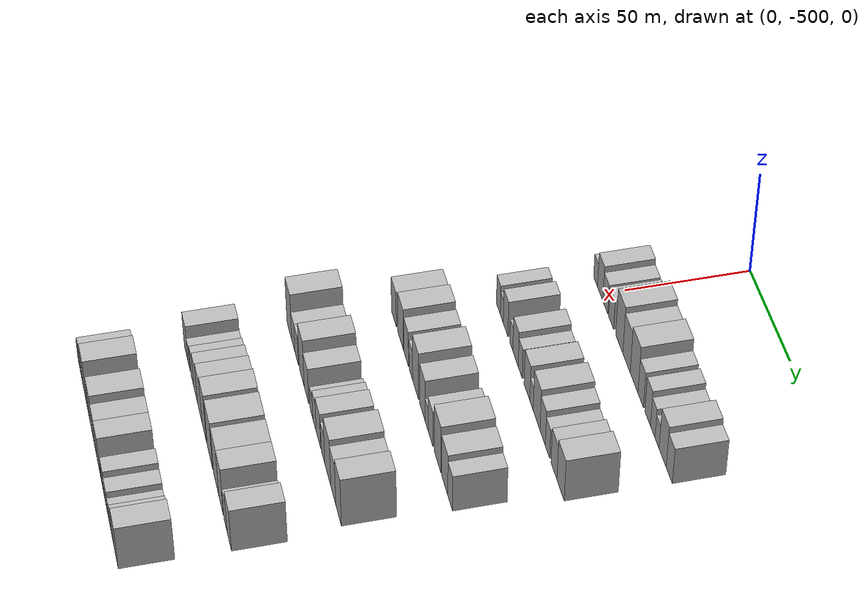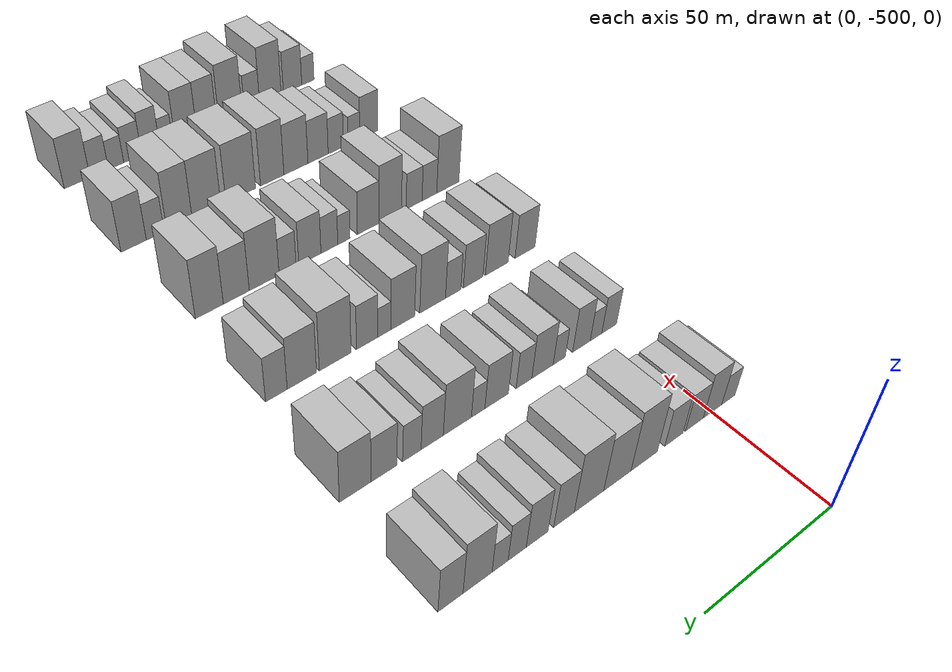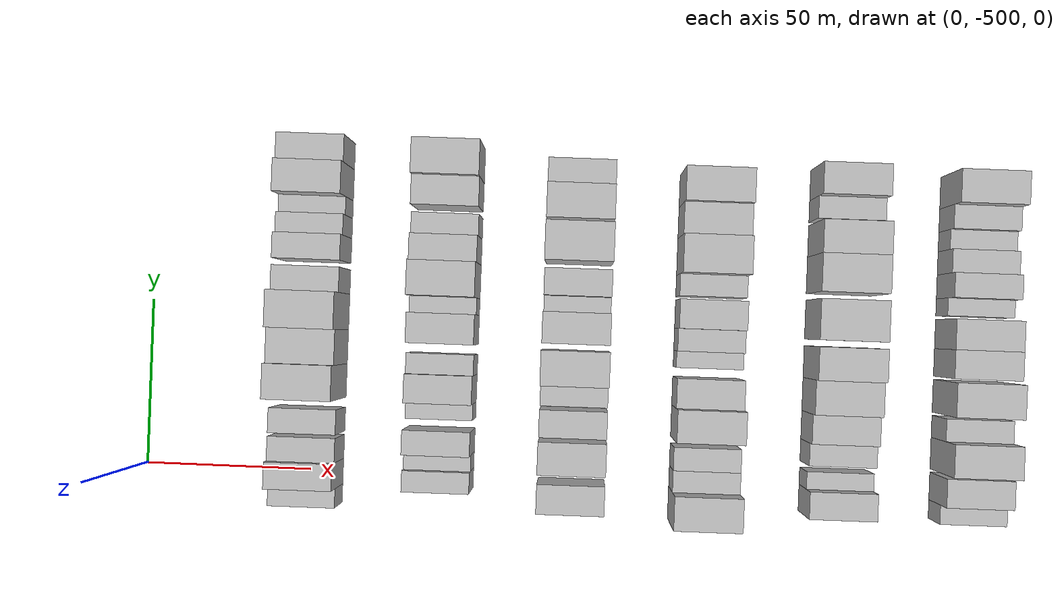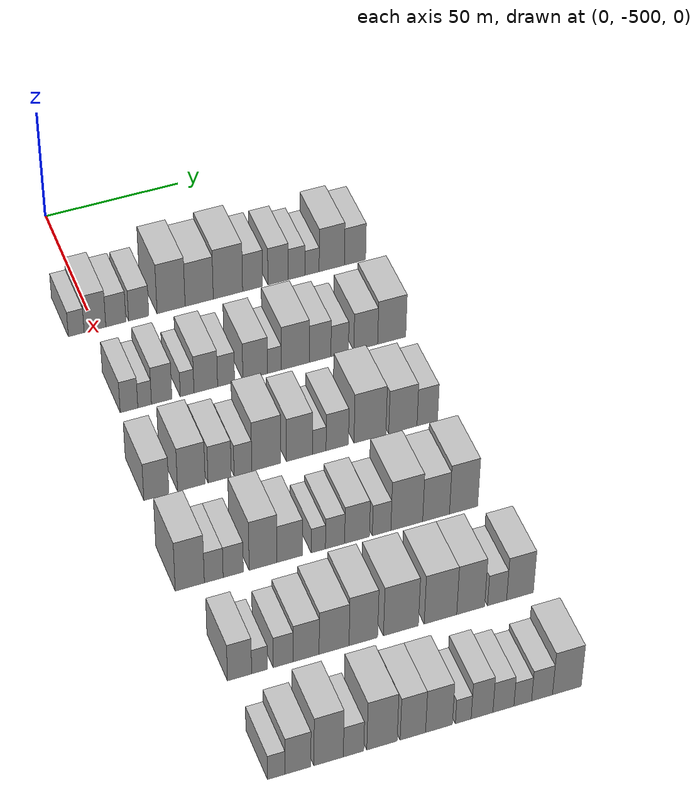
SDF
<sdf version="1.6">
 <world name="default">
  <model name="building_13">
   <static>1</static>
   <pose>50.0000 -507.2023 0 0.000000 0.000000 0.000000</pose>
   <link name="link">
    <pose>0 0 6.00 0 0 0</pose>
    <collision name="collision"><geometry><box><size>20.0000 5.7397 12.0000</size></box></geometry></collision>
    <visual name="visual">
     <cast_shadows>0</cast_shadows>
     <geometry><box><size>20.0000 5.7397 12.0000</size></box></geometry>
     <material>
      <script>
       <uri>model://HANNAS_wall/materials/scripts</uri>
       <uri>model://HANNAS_wall/materials/textures</uri>
       <name>vrc/HANNAS_wall</name>
      </script>
     </material>
    </visual>
   </link>
  </model>
  <model name="building_14">
   <static>1</static>
   <pose>50.0000 -500.3879 0 0.000000 0.000000 0.000000</pose>
   <link name="link">
    <pose>0 0 9.00 0 0 0</pose>
    <collision name="collision"><geometry><box><size>20.0000 7.8891 18.0000</size></box></geometry></collision>
    <visual name="visual">
     <cast_shadows>0</cast_shadows>
     <geometry><box><size>20.0000 7.8891 18.0000</size></box></geometry>
     <material>
      <script>
       <uri>model://HANNAS_wall/materials/scripts</uri>
       <uri>model://HANNAS_wall/materials/textures</uri>
       <name>vrc/HANNAS_wall</name>
      </script>
     </material>
    </visual>
   </link>
  </model>
  <model name="building_15">
   <static>1</static>
   <pose>50.0000 -492.7710 0 0.000000 0.000000 0.000000</pose>
   <link name="link">
    <pose>0 0 7.50 0 0 0</pose>
    <collision name="collision"><geometry><box><size>20.0000 7.3448 15.0000</size></box></geometry></collision>
    <visual name="visual">
     <cast_shadows>0</cast_shadows>
     <geometry><box><size>20.0000 7.3448 15.0000</size></box></geometry>
     <material>
      <script>
       <uri>model://HANNAS_wall/materials/scripts</uri>
       <uri>model://HANNAS_wall/materials/textures</uri>
       <name>vrc/HANNAS_wall</name>
      </script>
     </material>
    </visual>
   </link>
  </model>
  <model name="building_16">
   <static>1</static>
   <pose>50.0000 -484.3957 0 0.000000 0.000000 0.000000</pose>
   <link name="link">
    <pose>0 0 7.50 0 0 0</pose>
    <collision name="collision"><geometry><box><size>20.0000 7.4057 15.0000</size></box></geometry></collision>
    <visual name="visual">
     <cast_shadows>0</cast_shadows>
     <geometry><box><size>20.0000 7.4057 15.0000</size></box></geometry>
     <material>
      <script>
       <uri>model://HANNAS_wall/materials/scripts</uri>
       <uri>model://HANNAS_wall/materials/textures</uri>
       <name>vrc/HANNAS_wall</name>
      </script>
     </material>
    </visual>
   </link>
  </model>
  <model name="building_17">
   <static>1</static>
   <pose>50.0000 -472.5264 0 0.000000 0.000000 0.000000</pose>
   <link name="link">
    <pose>0 0 12.00 0 0 0</pose>
    <collision name="collision"><geometry><box><size>20.0000 10.3329 24.0000</size></box></geometry></collision>
    <visual name="visual">
     <cast_shadows>0</cast_shadows>
     <geometry><box><size>20.0000 10.3329 24.0000</size></box></geometry>
     <material>
      <script>
       <uri>model://HANNAS_wall/materials/scripts</uri>
       <uri>model://HANNAS_wall/materials/textures</uri>
       <name>vrc/HANNAS_wall</name>
      </script>
     </material>
    </visual>
   </link>
  </model>
  <model name="building_18">
   <static>1</static>
   <pose>50.0000 -462.1523 0 0.000000 0.000000 0.000000</pose>
   <link name="link">
    <pose>0 0 10.50 0 0 0</pose>
    <collision name="collision"><geometry><box><size>20.0000 10.4155 21.0000</size></box></geometry></collision>
    <visual name="visual">
     <cast_shadows>0</cast_shadows>
     <geometry><box><size>20.0000 10.4155 21.0000</size></box></geometry>
     <material>
      <script>
       <uri>model://HANNAS_wall/materials/scripts</uri>
       <uri>model://HANNAS_wall/materials/textures</uri>
       <name>vrc/HANNAS_wall</name>
      </script>
     </material>
    </visual>
   </link>
  </model>
  <model name="building_19">
   <static>1</static>
   <pose>50.0000 -451.4991 0 0.000000 0.000000 0.000000</pose>
   <link name="link">
    <pose>0 0 12.00 0 0 0</pose>
    <collision name="collision"><geometry><box><size>20.0000 10.8909 24.0000</size></box></geometry></collision>
    <visual name="visual">
     <cast_shadows>0</cast_shadows>
     <geometry><box><size>20.0000 10.8909 24.0000</size></box></geometry>
     <material>
      <script>
       <uri>model://HANNAS_wall/materials/scripts</uri>
       <uri>model://HANNAS_wall/materials/textures</uri>
       <name>vrc/HANNAS_wall</name>
      </script>
     </material>
    </visual>
   </link>
  </model>
  <model name="building_20">
   <static>1</static>
   <pose>50.0000 -442.3367 0 0.000000 0.000000 0.000000</pose>
   <link name="link">
    <pose>0 0 9.00 0 0 0</pose>
    <collision name="collision"><geometry><box><size>20.0000 7.4337 18.0000</size></box></geometry></collision>
    <visual name="visual">
     <cast_shadows>0</cast_shadows>
     <geometry><box><size>20.0000 7.4337 18.0000</size></box></geometry>
     <material>
      <script>
       <uri>model://HANNAS_wall/materials/scripts</uri>
       <uri>model://HANNAS_wall/materials/textures</uri>
       <name>vrc/HANNAS_wall</name>
      </script>
     </material>
    </visual>
   </link>
  </model>
  <model name="building_21">
   <static>1</static>
   <pose>50.0000 -432.8112 0 0.000000 0.000000 0.000000</pose>
   <link name="link">
    <pose>0 0 9.00 0 0 0</pose>
    <collision name="collision"><geometry><box><size>20.0000 7.6175 18.0000</size></box></geometry></collision>
    <visual name="visual">
     <cast_shadows>0</cast_shadows>
     <geometry><box><size>20.0000 7.6175 18.0000</size></box></geometry>
     <material>
      <script>
       <uri>model://HANNAS_wall/materials/scripts</uri>
       <uri>model://HANNAS_wall/materials/textures</uri>
       <name>vrc/HANNAS_wall</name>
      </script>
     </material>
    </visual>
   </link>
  </model>
  <model name="building_22">
   <static>1</static>
   <pose>50.0000 -425.9050 0 0.000000 0.000000 0.000000</pose>
   <link name="link">
    <pose>0 0 7.50 0 0 0</pose>
    <collision name="collision"><geometry><box><size>20.0000 6.1948 15.0000</size></box></geometry></collision>
    <visual name="visual">
     <cast_shadows>0</cast_shadows>
     <geometry><box><size>20.0000 6.1948 15.0000</size></box></geometry>
     <material>
      <script>
       <uri>model://HANNAS_wall/materials/scripts</uri>
       <uri>model://HANNAS_wall/materials/textures</uri>
       <name>vrc/HANNAS_wall</name>
      </script>
     </material>
    </visual>
   </link>
  </model>
  <model name="building_23">
   <static>1</static>
   <pose>50.0000 -420.1066 0 0.000000 0.000000 0.000000</pose>
   <link name="link">
    <pose>0 0 6.00 0 0 0</pose>
    <collision name="collision"><geometry><box><size>20.0000 5.4019 12.0000</size></box></geometry></collision>
    <visual name="visual">
     <cast_shadows>0</cast_shadows>
     <geometry><box><size>20.0000 5.4019 12.0000</size></box></geometry>
     <material>
      <script>
       <uri>model://HANNAS_wall/materials/scripts</uri>
       <uri>model://HANNAS_wall/materials/textures</uri>
       <name>vrc/HANNAS_wall</name>
      </script>
     </material>
    </visual>
   </link>
  </model>
  <model name="building_24">
   <static>1</static>
   <pose>50.0000 -412.6392 0 0.000000 0.000000 0.000000</pose>
   <link name="link">
    <pose>0 0 10.50 0 0 0</pose>
    <collision name="collision"><geometry><box><size>20.0000 9.5329 21.0000</size></box></geometry></collision>
    <visual name="visual">
     <cast_shadows>0</cast_shadows>
     <geometry><box><size>20.0000 9.5329 21.0000</size></box></geometry>
     <material>
      <script>
       <uri>model://HANNAS_wall/materials/scripts</uri>
       <uri>model://HANNAS_wall/materials/textures</uri>
       <name>vrc/HANNAS_wall</name>
      </script>
     </material>
    </visual>
   </link>
  </model>
  <model name="building_25">
   <static>1</static>
   <pose>50.0000 -403.8558 0 0.000000 0.000000 0.000000</pose>
   <link name="link">
    <pose>0 0 9.00 0 0 0</pose>
    <collision name="collision"><geometry><box><size>20.0000 8.0339 18.0000</size></box></geometry></collision>
    <visual name="visual">
     <cast_shadows>0</cast_shadows>
     <geometry><box><size>20.0000 8.0339 18.0000</size></box></geometry>
     <material>
      <script>
       <uri>model://HANNAS_wall/materials/scripts</uri>
       <uri>model://HANNAS_wall/materials/textures</uri>
       <name>vrc/HANNAS_wall</name>
      </script>
     </material>
    </visual>
   </link>
  </model>
  <model name="building_146">
   <static>1</static>
   <pose>90.0000 -500.9166 0 0.000000 0.000000 0.000000</pose>
   <link name="link">
    <pose>0 0 7.50 0 0 0</pose>
    <collision name="collision"><geometry><box><size>20.0000 6.2912 15.0000</size></box></geometry></collision>
    <visual name="visual">
     <cast_shadows>0</cast_shadows>
     <geometry><box><size>20.0000 6.2912 15.0000</size></box></geometry>
     <material>
      <script>
       <uri>model://HANNAS_wall/materials/scripts</uri>
       <uri>model://HANNAS_wall/materials/textures</uri>
       <name>vrc/HANNAS_wall</name>
      </script>
     </material>
    </visual>
   </link>
  </model>
  <model name="building_147">
   <static>1</static>
   <pose>90.0000 -495.3293 0 0.000000 0.000000 0.000000</pose>
   <link name="link">
    <pose>0 0 6.00 0 0 0</pose>
    <collision name="collision"><geometry><box><size>20.0000 4.8832 12.0000</size></box></geometry></collision>
    <visual name="visual">
     <cast_shadows>0</cast_shadows>
     <geometry><box><size>20.0000 4.8832 12.0000</size></box></geometry>
     <material>
      <script>
       <uri>model://HANNAS_wall/materials/scripts</uri>
       <uri>model://HANNAS_wall/materials/textures</uri>
       <name>vrc/HANNAS_wall</name>
      </script>
     </material>
    </visual>
   </link>
  </model>
  <model name="building_148">
   <static>1</static>
   <pose>90.0000 -489.2327 0 0.000000 0.000000 0.000000</pose>
   <link name="link">
    <pose>0 0 9.00 0 0 0</pose>
    <collision name="collision"><geometry><box><size>20.0000 7.3100 18.0000</size></box></geometry></collision>
    <visual name="visual">
     <cast_shadows>0</cast_shadows>
     <geometry><box><size>20.0000 7.3100 18.0000</size></box></geometry>
     <material>
      <script>
       <uri>model://HANNAS_wall/materials/scripts</uri>
       <uri>model://HANNAS_wall/materials/textures</uri>
       <name>vrc/HANNAS_wall</name>
      </script>
     </material>
    </visual>
   </link>
  </model>
  <model name="building_149">
   <static>1</static>
   <pose>90.0000 -480.1128 0 0.000000 0.000000 0.000000</pose>
   <link name="link">
    <pose>0 0 6.00 0 0 0</pose>
    <collision name="collision"><geometry><box><size>20.0000 4.9297 12.0000</size></box></geometry></collision>
    <visual name="visual">
     <cast_shadows>0</cast_shadows>
     <geometry><box><size>20.0000 4.9297 12.0000</size></box></geometry>
     <material>
      <script>
       <uri>model://HANNAS_wall/materials/scripts</uri>
       <uri>model://HANNAS_wall/materials/textures</uri>
       <name>vrc/HANNAS_wall</name>
      </script>
     </material>
    </visual>
   </link>
  </model>
  <model name="building_150">
   <static>1</static>
   <pose>90.0000 -473.3917 0 0.000000 0.000000 0.000000</pose>
   <link name="link">
    <pose>0 0 9.00 0 0 0</pose>
    <collision name="collision"><geometry><box><size>20.0000 8.5124 18.0000</size></box></geometry></collision>
    <visual name="visual">
     <cast_shadows>0</cast_shadows>
     <geometry><box><size>20.0000 8.5124 18.0000</size></box></geometry>
     <material>
      <script>
       <uri>model://HANNAS_wall/materials/scripts</uri>
       <uri>model://HANNAS_wall/materials/textures</uri>
       <name>vrc/HANNAS_wall</name>
      </script>
     </material>
    </visual>
   </link>
  </model>
  <model name="building_151">
   <static>1</static>
   <pose>90.0000 -466.0597 0 0.000000 0.000000 0.000000</pose>
   <link name="link">
    <pose>0 0 7.50 0 0 0</pose>
    <collision name="collision"><geometry><box><size>20.0000 6.1516 15.0000</size></box></geometry></collision>
    <visual name="visual">
     <cast_shadows>0</cast_shadows>
     <geometry><box><size>20.0000 6.1516 15.0000</size></box></geometry>
     <material>
      <script>
       <uri>model://HANNAS_wall/materials/scripts</uri>
       <uri>model://HANNAS_wall/materials/textures</uri>
       <name>vrc/HANNAS_wall</name>
      </script>
     </material>
    </visual>
   </link>
  </model>
  <model name="building_152">
   <static>1</static>
   <pose>90.0000 -455.5206 0 0.000000 0.000000 0.000000</pose>
   <link name="link">
    <pose>0 0 9.00 0 0 0</pose>
    <collision name="collision"><geometry><box><size>20.0000 8.9267 18.0000</size></box></geometry></collision>
    <visual name="visual">
     <cast_shadows>0</cast_shadows>
     <geometry><box><size>20.0000 8.9267 18.0000</size></box></geometry>
     <material>
      <script>
       <uri>model://HANNAS_wall/materials/scripts</uri>
       <uri>model://HANNAS_wall/materials/textures</uri>
       <name>vrc/HANNAS_wall</name>
      </script>
     </material>
    </visual>
   </link>
  </model>
  <model name="building_153">
   <static>1</static>
   <pose>90.0000 -448.5395 0 0.000000 0.000000 0.000000</pose>
   <link name="link">
    <pose>0 0 6.00 0 0 0</pose>
    <collision name="collision"><geometry><box><size>20.0000 5.0355 12.0000</size></box></geometry></collision>
    <visual name="visual">
     <cast_shadows>0</cast_shadows>
     <geometry><box><size>20.0000 5.0355 12.0000</size></box></geometry>
     <material>
      <script>
       <uri>model://HANNAS_wall/materials/scripts</uri>
       <uri>model://HANNAS_wall/materials/textures</uri>
       <name>vrc/HANNAS_wall</name>
      </script>
     </material>
    </visual>
   </link>
  </model>
  <model name="building_154">
   <static>1</static>
   <pose>90.0000 -440.8781 0 0.000000 0.000000 0.000000</pose>
   <link name="link">
    <pose>0 0 10.50 0 0 0</pose>
    <collision name="collision"><geometry><box><size>20.0000 10.2872 21.0000</size></box></geometry></collision>
    <visual name="visual">
     <cast_shadows>0</cast_shadows>
     <geometry><box><size>20.0000 10.2872 21.0000</size></box></geometry>
     <material>
      <script>
       <uri>model://HANNAS_wall/materials/scripts</uri>
       <uri>model://HANNAS_wall/materials/textures</uri>
       <name>vrc/HANNAS_wall</name>
      </script>
     </material>
    </visual>
   </link>
  </model>
  <model name="building_155">
   <static>1</static>
   <pose>90.0000 -431.7804 0 0.000000 0.000000 0.000000</pose>
   <link name="link">
    <pose>0 0 9.00 0 0 0</pose>
    <collision name="collision"><geometry><box><size>20.0000 7.9082 18.0000</size></box></geometry></collision>
    <visual name="visual">
     <cast_shadows>0</cast_shadows>
     <geometry><box><size>20.0000 7.9082 18.0000</size></box></geometry>
     <material>
      <script>
       <uri>model://HANNAS_wall/materials/scripts</uri>
       <uri>model://HANNAS_wall/materials/textures</uri>
       <name>vrc/HANNAS_wall</name>
      </script>
     </material>
    </visual>
   </link>
  </model>
  <model name="building_156">
   <static>1</static>
   <pose>90.0000 -424.6056 0 0.000000 0.000000 0.000000</pose>
   <link name="link">
    <pose>0 0 7.50 0 0 0</pose>
    <collision name="collision"><geometry><box><size>20.0000 6.4415 15.0000</size></box></geometry></collision>
    <visual name="visual">
     <cast_shadows>0</cast_shadows>
     <geometry><box><size>20.0000 6.4415 15.0000</size></box></geometry>
     <material>
      <script>
       <uri>model://HANNAS_wall/materials/scripts</uri>
       <uri>model://HANNAS_wall/materials/textures</uri>
       <name>vrc/HANNAS_wall</name>
      </script>
     </material>
    </visual>
   </link>
  </model>
  <model name="building_157">
   <static>1</static>
   <pose>90.0000 -414.9894 0 0.000000 0.000000 0.000000</pose>
   <link name="link">
    <pose>0 0 9.00 0 0 0</pose>
    <collision name="collision"><geometry><box><size>20.0000 8.7909 18.0000</size></box></geometry></collision>
    <visual name="visual">
     <cast_shadows>0</cast_shadows>
     <geometry><box><size>20.0000 8.7909 18.0000</size></box></geometry>
     <material>
      <script>
       <uri>model://HANNAS_wall/materials/scripts</uri>
       <uri>model://HANNAS_wall/materials/textures</uri>
       <name>vrc/HANNAS_wall</name>
      </script>
     </material>
    </visual>
   </link>
  </model>
  <model name="building_158">
   <static>1</static>
   <pose>90.0000 -405.3803 0 0.000000 0.000000 0.000000</pose>
   <link name="link">
    <pose>0 0 10.50 0 0 0</pose>
    <collision name="collision"><geometry><box><size>20.0000 10.4272 21.0000</size></box></geometry></collision>
    <visual name="visual">
     <cast_shadows>0</cast_shadows>
     <geometry><box><size>20.0000 10.4272 21.0000</size></box></geometry>
     <material>
      <script>
       <uri>model://HANNAS_wall/materials/scripts</uri>
       <uri>model://HANNAS_wall/materials/textures</uri>
       <name>vrc/HANNAS_wall</name>
      </script>
     </material>
    </visual>
   </link>
  </model>
  <model name="building_280">
   <static>1</static>
   <pose>130.0000 -504.3291 0 0.000000 0.000000 0.000000</pose>
   <link name="link">
    <pose>0 0 9.00 0 0 0</pose>
    <collision name="collision"><geometry><box><size>20.0000 8.7435 18.0000</size></box></geometry></collision>
    <visual name="visual">
     <cast_shadows>0</cast_shadows>
     <geometry><box><size>20.0000 8.7435 18.0000</size></box></geometry>
     <material>
      <script>
       <uri>model://HANNAS_wall/materials/scripts</uri>
       <uri>model://HANNAS_wall/materials/textures</uri>
       <name>vrc/HANNAS_wall</name>
      </script>
     </material>
    </visual>
   </link>
  </model>
  <model name="building_281">
   <static>1</static>
   <pose>130.0000 -492.1148 0 0.000000 0.000000 0.000000</pose>
   <link name="link">
    <pose>0 0 10.50 0 0 0</pose>
    <collision name="collision"><geometry><box><size>20.0000 9.6852 21.0000</size></box></geometry></collision>
    <visual name="visual">
     <cast_shadows>0</cast_shadows>
     <geometry><box><size>20.0000 9.6852 21.0000</size></box></geometry>
     <material>
      <script>
       <uri>model://HANNAS_wall/materials/scripts</uri>
       <uri>model://HANNAS_wall/materials/textures</uri>
       <name>vrc/HANNAS_wall</name>
      </script>
     </material>
    </visual>
   </link>
  </model>
  <model name="building_282">
   <static>1</static>
   <pose>130.0000 -482.1944 0 0.000000 0.000000 0.000000</pose>
   <link name="link">
    <pose>0 0 9.00 0 0 0</pose>
    <collision name="collision"><geometry><box><size>20.0000 8.1557 18.0000</size></box></geometry></collision>
    <visual name="visual">
     <cast_shadows>0</cast_shadows>
     <geometry><box><size>20.0000 8.1557 18.0000</size></box></geometry>
     <material>
      <script>
       <uri>model://HANNAS_wall/materials/scripts</uri>
       <uri>model://HANNAS_wall/materials/textures</uri>
       <name>vrc/HANNAS_wall</name>
      </script>
     </material>
    </visual>
   </link>
  </model>
  <model name="building_283">
   <static>1</static>
   <pose>130.0000 -473.9887 0 0.000000 0.000000 0.000000</pose>
   <link name="link">
    <pose>0 0 7.50 0 0 0</pose>
    <collision name="collision"><geometry><box><size>20.0000 6.2557 15.0000</size></box></geometry></collision>
    <visual name="visual">
     <cast_shadows>0</cast_shadows>
     <geometry><box><size>20.0000 6.2557 15.0000</size></box></geometry>
     <material>
      <script>
       <uri>model://HANNAS_wall/materials/scripts</uri>
       <uri>model://HANNAS_wall/materials/textures</uri>
       <name>vrc/HANNAS_wall</name>
      </script>
     </material>
    </visual>
   </link>
  </model>
  <model name="building_284">
   <static>1</static>
   <pose>130.0000 -465.7226 0 0.000000 0.000000 0.000000</pose>
   <link name="link">
    <pose>0 0 12.00 0 0 0</pose>
    <collision name="collision"><geometry><box><size>20.0000 10.2764 24.0000</size></box></geometry></collision>
    <visual name="visual">
     <cast_shadows>0</cast_shadows>
     <geometry><box><size>20.0000 10.2764 24.0000</size></box></geometry>
     <material>
      <script>
       <uri>model://HANNAS_wall/materials/scripts</uri>
       <uri>model://HANNAS_wall/materials/textures</uri>
       <name>vrc/HANNAS_wall</name>
      </script>
     </material>
    </visual>
   </link>
  </model>
  <model name="building_285">
   <static>1</static>
   <pose>130.0000 -453.9522 0 0.000000 0.000000 0.000000</pose>
   <link name="link">
    <pose>0 0 10.50 0 0 0</pose>
    <collision name="collision"><geometry><box><size>20.0000 9.2643 21.0000</size></box></geometry></collision>
    <visual name="visual">
     <cast_shadows>0</cast_shadows>
     <geometry><box><size>20.0000 9.2643 21.0000</size></box></geometry>
     <material>
      <script>
       <uri>model://HANNAS_wall/materials/scripts</uri>
       <uri>model://HANNAS_wall/materials/textures</uri>
       <name>vrc/HANNAS_wall</name>
      </script>
     </material>
    </visual>
   </link>
  </model>
  <model name="building_286">
   <static>1</static>
   <pose>130.0000 -446.8900 0 0.000000 0.000000 0.000000</pose>
   <link name="link">
    <pose>0 0 6.00 0 0 0</pose>
    <collision name="collision"><geometry><box><size>20.0000 4.8601 12.0000</size></box></geometry></collision>
    <visual name="visual">
     <cast_shadows>0</cast_shadows>
     <geometry><box><size>20.0000 4.8601 12.0000</size></box></geometry>
     <material>
      <script>
       <uri>model://HANNAS_wall/materials/scripts</uri>
       <uri>model://HANNAS_wall/materials/textures</uri>
       <name>vrc/HANNAS_wall</name>
      </script>
     </material>
    </visual>
   </link>
  </model>
  <model name="building_287">
   <static>1</static>
   <pose>130.0000 -440.4445 0 0.000000 0.000000 0.000000</pose>
   <link name="link">
    <pose>0 0 9.00 0 0 0</pose>
    <collision name="collision"><geometry><box><size>20.0000 8.0310 18.0000</size></box></geometry></collision>
    <visual name="visual">
     <cast_shadows>0</cast_shadows>
     <geometry><box><size>20.0000 8.0310 18.0000</size></box></geometry>
     <material>
      <script>
       <uri>model://HANNAS_wall/materials/scripts</uri>
       <uri>model://HANNAS_wall/materials/textures</uri>
       <name>vrc/HANNAS_wall</name>
      </script>
     </material>
    </visual>
   </link>
  </model>
  <model name="building_288">
   <static>1</static>
   <pose>130.0000 -428.6830 0 0.000000 0.000000 0.000000</pose>
   <link name="link">
    <pose>0 0 12.00 0 0 0</pose>
    <collision name="collision"><geometry><box><size>20.0000 11.4920 24.0000</size></box></geometry></collision>
    <visual name="visual">
     <cast_shadows>0</cast_shadows>
     <geometry><box><size>20.0000 11.4920 24.0000</size></box></geometry>
     <material>
      <script>
       <uri>model://HANNAS_wall/materials/scripts</uri>
       <uri>model://HANNAS_wall/materials/textures</uri>
       <name>vrc/HANNAS_wall</name>
      </script>
     </material>
    </visual>
   </link>
  </model>
  <model name="building_289">
   <static>1</static>
   <pose>130.0000 -416.8053 0 0.000000 0.000000 0.000000</pose>
   <link name="link">
    <pose>0 0 10.50 0 0 0</pose>
    <collision name="collision"><geometry><box><size>20.0000 10.2636 21.0000</size></box></geometry></collision>
    <visual name="visual">
     <cast_shadows>0</cast_shadows>
     <geometry><box><size>20.0000 10.2636 21.0000</size></box></geometry>
     <material>
      <script>
       <uri>model://HANNAS_wall/materials/scripts</uri>
       <uri>model://HANNAS_wall/materials/textures</uri>
       <name>vrc/HANNAS_wall</name>
      </script>
     </material>
    </visual>
   </link>
  </model>
  <model name="building_290">
   <static>1</static>
   <pose>130.0000 -407.9499 0 0.000000 0.000000 0.000000</pose>
   <link name="link">
    <pose>0 0 9.00 0 0 0</pose>
    <collision name="collision"><geometry><box><size>20.0000 7.4472 18.0000</size></box></geometry></collision>
    <visual name="visual">
     <cast_shadows>0</cast_shadows>
     <geometry><box><size>20.0000 7.4472 18.0000</size></box></geometry>
     <material>
      <script>
       <uri>model://HANNAS_wall/materials/scripts</uri>
       <uri>model://HANNAS_wall/materials/textures</uri>
       <name>vrc/HANNAS_wall</name>
      </script>
     </material>
    </visual>
   </link>
  </model>
  <model name="building_405">
   <static>1</static>
   <pose>170.0000 -506.1889 0 0.000000 0.000000 0.000000</pose>
   <link name="link">
    <pose>0 0 12.00 0 0 0</pose>
    <collision name="collision"><geometry><box><size>20.0000 9.9127 24.0000</size></box></geometry></collision>
    <visual name="visual">
     <cast_shadows>0</cast_shadows>
     <geometry><box><size>20.0000 9.9127 24.0000</size></box></geometry>
     <material>
      <script>
       <uri>model://HANNAS_wall/materials/scripts</uri>
       <uri>model://HANNAS_wall/materials/textures</uri>
       <name>vrc/HANNAS_wall</name>
      </script>
     </material>
    </visual>
   </link>
  </model>
  <model name="building_406">
   <static>1</static>
   <pose>170.0000 -498.0154 0 0.000000 0.000000 0.000000</pose>
   <link name="link">
    <pose>0 0 7.50 0 0 0</pose>
    <collision name="collision"><geometry><box><size>20.0000 6.4344 15.0000</size></box></geometry></collision>
    <visual name="visual">
     <cast_shadows>0</cast_shadows>
     <geometry><box><size>20.0000 6.4344 15.0000</size></box></geometry>
     <material>
      <script>
       <uri>model://HANNAS_wall/materials/scripts</uri>
       <uri>model://HANNAS_wall/materials/textures</uri>
       <name>vrc/HANNAS_wall</name>
      </script>
     </material>
    </visual>
   </link>
  </model>
  <model name="building_407">
   <static>1</static>
   <pose>170.0000 -491.3374 0 0.000000 0.000000 0.000000</pose>
   <link name="link">
    <pose>0 0 7.50 0 0 0</pose>
    <collision name="collision"><geometry><box><size>20.0000 6.9215 15.0000</size></box></geometry></collision>
    <visual name="visual">
     <cast_shadows>0</cast_shadows>
     <geometry><box><size>20.0000 6.9215 15.0000</size></box></geometry>
     <material>
      <script>
       <uri>model://HANNAS_wall/materials/scripts</uri>
       <uri>model://HANNAS_wall/materials/textures</uri>
       <name>vrc/HANNAS_wall</name>
      </script>
     </material>
    </visual>
   </link>
  </model>
  <model name="building_408">
   <static>1</static>
   <pose>170.0000 -481.0758 0 0.000000 0.000000 0.000000</pose>
   <link name="link">
    <pose>0 0 12.00 0 0 0</pose>
    <collision name="collision"><geometry><box><size>20.0000 9.6016 24.0000</size></box></geometry></collision>
    <visual name="visual">
     <cast_shadows>0</cast_shadows>
     <geometry><box><size>20.0000 9.6016 24.0000</size></box></geometry>
     <material>
      <script>
       <uri>model://HANNAS_wall/materials/scripts</uri>
       <uri>model://HANNAS_wall/materials/textures</uri>
       <name>vrc/HANNAS_wall</name>
      </script>
     </material>
    </visual>
   </link>
  </model>
  <model name="building_409">
   <static>1</static>
   <pose>170.0000 -471.8596 0 0.000000 0.000000 0.000000</pose>
   <link name="link">
    <pose>0 0 9.00 0 0 0</pose>
    <collision name="collision"><geometry><box><size>20.0000 8.8309 18.0000</size></box></geometry></collision>
    <visual name="visual">
     <cast_shadows>0</cast_shadows>
     <geometry><box><size>20.0000 8.8309 18.0000</size></box></geometry>
     <material>
      <script>
       <uri>model://HANNAS_wall/materials/scripts</uri>
       <uri>model://HANNAS_wall/materials/textures</uri>
       <name>vrc/HANNAS_wall</name>
      </script>
     </material>
    </visual>
   </link>
  </model>
  <model name="building_410">
   <static>1</static>
   <pose>170.0000 -461.9708 0 0.000000 0.000000 0.000000</pose>
   <link name="link">
    <pose>0 0 6.00 0 0 0</pose>
    <collision name="collision"><geometry><box><size>20.0000 4.9467 12.0000</size></box></geometry></collision>
    <visual name="visual">
     <cast_shadows>0</cast_shadows>
     <geometry><box><size>20.0000 4.9467 12.0000</size></box></geometry>
     <material>
      <script>
       <uri>model://HANNAS_wall/materials/scripts</uri>
       <uri>model://HANNAS_wall/materials/textures</uri>
       <name>vrc/HANNAS_wall</name>
      </script>
     </material>
    </visual>
   </link>
  </model>
  <model name="building_411">
   <static>1</static>
   <pose>170.0000 -456.1544 0 0.000000 0.000000 0.000000</pose>
   <link name="link">
    <pose>0 0 7.50 0 0 0</pose>
    <collision name="collision"><geometry><box><size>20.0000 6.6863 15.0000</size></box></geometry></collision>
    <visual name="visual">
     <cast_shadows>0</cast_shadows>
     <geometry><box><size>20.0000 6.6863 15.0000</size></box></geometry>
     <material>
      <script>
       <uri>model://HANNAS_wall/materials/scripts</uri>
       <uri>model://HANNAS_wall/materials/textures</uri>
       <name>vrc/HANNAS_wall</name>
      </script>
     </material>
    </visual>
   </link>
  </model>
  <model name="building_412">
   <static>1</static>
   <pose>170.0000 -448.4672 0 0.000000 0.000000 0.000000</pose>
   <link name="link">
    <pose>0 0 9.00 0 0 0</pose>
    <collision name="collision"><geometry><box><size>20.0000 8.6880 18.0000</size></box></geometry></collision>
    <visual name="visual">
     <cast_shadows>0</cast_shadows>
     <geometry><box><size>20.0000 8.6880 18.0000</size></box></geometry>
     <material>
      <script>
       <uri>model://HANNAS_wall/materials/scripts</uri>
       <uri>model://HANNAS_wall/materials/textures</uri>
       <name>vrc/HANNAS_wall</name>
      </script>
     </material>
    </visual>
   </link>
  </model>
  <model name="building_413">
   <static>1</static>
   <pose>170.0000 -439.8720 0 0.000000 0.000000 0.000000</pose>
   <link name="link">
    <pose>0 0 7.50 0 0 0</pose>
    <collision name="collision"><geometry><box><size>20.0000 6.5026 15.0000</size></box></geometry></collision>
    <visual name="visual">
     <cast_shadows>0</cast_shadows>
     <geometry><box><size>20.0000 6.5026 15.0000</size></box></geometry>
     <material>
      <script>
       <uri>model://HANNAS_wall/materials/scripts</uri>
       <uri>model://HANNAS_wall/materials/textures</uri>
       <name>vrc/HANNAS_wall</name>
      </script>
     </material>
    </visual>
   </link>
  </model>
  <model name="building_414">
   <static>1</static>
   <pose>170.0000 -431.0122 0 0.000000 0.000000 0.000000</pose>
   <link name="link">
    <pose>0 0 12.00 0 0 0</pose>
    <collision name="collision"><geometry><box><size>20.0000 11.2169 24.0000</size></box></geometry></collision>
    <visual name="visual">
     <cast_shadows>0</cast_shadows>
     <geometry><box><size>20.0000 11.2169 24.0000</size></box></geometry>
     <material>
      <script>
       <uri>model://HANNAS_wall/materials/scripts</uri>
       <uri>model://HANNAS_wall/materials/textures</uri>
       <name>vrc/HANNAS_wall</name>
      </script>
     </material>
    </visual>
   </link>
  </model>
  <model name="building_415">
   <static>1</static>
   <pose>170.0000 -420.6659 0 0.000000 0.000000 0.000000</pose>
   <link name="link">
    <pose>0 0 10.50 0 0 0</pose>
    <collision name="collision"><geometry><box><size>20.0000 9.4757 21.0000</size></box></geometry></collision>
    <visual name="visual">
     <cast_shadows>0</cast_shadows>
     <geometry><box><size>20.0000 9.4757 21.0000</size></box></geometry>
     <material>
      <script>
       <uri>model://HANNAS_wall/materials/scripts</uri>
       <uri>model://HANNAS_wall/materials/textures</uri>
       <name>vrc/HANNAS_wall</name>
      </script>
     </material>
    </visual>
   </link>
  </model>
  <model name="building_416">
   <static>1</static>
   <pose>170.0000 -410.9136 0 0.000000 0.000000 0.000000</pose>
   <link name="link">
    <pose>0 0 12.00 0 0 0</pose>
    <collision name="collision"><geometry><box><size>20.0000 10.0290 24.0000</size></box></geometry></collision>
    <visual name="visual">
     <cast_shadows>0</cast_shadows>
     <geometry><box><size>20.0000 10.0290 24.0000</size></box></geometry>
     <material>
      <script>
       <uri>model://HANNAS_wall/materials/scripts</uri>
       <uri>model://HANNAS_wall/materials/textures</uri>
       <name>vrc/HANNAS_wall</name>
      </script>
     </material>
    </visual>
   </link>
  </model>
  <model name="building_554">
   <static>1</static>
   <pose>210.0000 -503.1831 0 0.000000 0.000000 0.000000</pose>
   <link name="link">
    <pose>0 0 9.00 0 0 0</pose>
    <collision name="collision"><geometry><box><size>20.0000 8.0672 18.0000</size></box></geometry></collision>
    <visual name="visual">
     <cast_shadows>0</cast_shadows>
     <geometry><box><size>20.0000 8.0672 18.0000</size></box></geometry>
     <material>
      <script>
       <uri>model://HANNAS_wall/materials/scripts</uri>
       <uri>model://HANNAS_wall/materials/textures</uri>
       <name>vrc/HANNAS_wall</name>
      </script>
     </material>
    </visual>
   </link>
  </model>
  <model name="building_555">
   <static>1</static>
   <pose>210.0000 -496.5232 0 0.000000 0.000000 0.000000</pose>
   <link name="link">
    <pose>0 0 6.00 0 0 0</pose>
    <collision name="collision"><geometry><box><size>20.0000 5.2525 12.0000</size></box></geometry></collision>
    <visual name="visual">
     <cast_shadows>0</cast_shadows>
     <geometry><box><size>20.0000 5.2525 12.0000</size></box></geometry>
     <material>
      <script>
       <uri>model://HANNAS_wall/materials/scripts</uri>
       <uri>model://HANNAS_wall/materials/textures</uri>
       <name>vrc/HANNAS_wall</name>
      </script>
     </material>
    </visual>
   </link>
  </model>
  <model name="building_556">
   <static>1</static>
   <pose>210.0000 -488.5532 0 0.000000 0.000000 0.000000</pose>
   <link name="link">
    <pose>0 0 7.50 0 0 0</pose>
    <collision name="collision"><geometry><box><size>20.0000 6.6876 15.0000</size></box></geometry></collision>
    <visual name="visual">
     <cast_shadows>0</cast_shadows>
     <geometry><box><size>20.0000 6.6876 15.0000</size></box></geometry>
     <material>
      <script>
       <uri>model://HANNAS_wall/materials/scripts</uri>
       <uri>model://HANNAS_wall/materials/textures</uri>
       <name>vrc/HANNAS_wall</name>
      </script>
     </material>
    </visual>
   </link>
  </model>
  <model name="building_557">
   <static>1</static>
   <pose>210.0000 -480.8419 0 0.000000 0.000000 0.000000</pose>
   <link name="link">
    <pose>0 0 9.00 0 0 0</pose>
    <collision name="collision"><geometry><box><size>20.0000 8.7349 18.0000</size></box></geometry></collision>
    <visual name="visual">
     <cast_shadows>0</cast_shadows>
     <geometry><box><size>20.0000 8.7349 18.0000</size></box></geometry>
     <material>
      <script>
       <uri>model://HANNAS_wall/materials/scripts</uri>
       <uri>model://HANNAS_wall/materials/textures</uri>
       <name>vrc/HANNAS_wall</name>
      </script>
     </material>
    </visual>
   </link>
  </model>
  <model name="building_558">
   <static>1</static>
   <pose>210.0000 -471.3979 0 0.000000 0.000000 0.000000</pose>
   <link name="link">
    <pose>0 0 10.50 0 0 0</pose>
    <collision name="collision"><geometry><box><size>20.0000 10.1531 21.0000</size></box></geometry></collision>
    <visual name="visual">
     <cast_shadows>0</cast_shadows>
     <geometry><box><size>20.0000 10.1531 21.0000</size></box></geometry>
     <material>
      <script>
       <uri>model://HANNAS_wall/materials/scripts</uri>
       <uri>model://HANNAS_wall/materials/textures</uri>
       <name>vrc/HANNAS_wall</name>
      </script>
     </material>
    </visual>
   </link>
  </model>
  <model name="building_559">
   <static>1</static>
   <pose>210.0000 -461.4633 0 0.000000 0.000000 0.000000</pose>
   <link name="link">
    <pose>0 0 12.00 0 0 0</pose>
    <collision name="collision"><geometry><box><size>20.0000 9.7161 24.0000</size></box></geometry></collision>
    <visual name="visual">
     <cast_shadows>0</cast_shadows>
     <geometry><box><size>20.0000 9.7161 24.0000</size></box></geometry>
     <material>
      <script>
       <uri>model://HANNAS_wall/materials/scripts</uri>
       <uri>model://HANNAS_wall/materials/textures</uri>
       <name>vrc/HANNAS_wall</name>
      </script>
     </material>
    </visual>
   </link>
  </model>
  <model name="building_560">
   <static>1</static>
   <pose>210.0000 -448.6299 0 0.000000 0.000000 0.000000</pose>
   <link name="link">
    <pose>0 0 12.00 0 0 0</pose>
    <collision name="collision"><geometry><box><size>20.0000 11.9507 24.0000</size></box></geometry></collision>
    <visual name="visual">
     <cast_shadows>0</cast_shadows>
     <geometry><box><size>20.0000 11.9507 24.0000</size></box></geometry>
     <material>
      <script>
       <uri>model://HANNAS_wall/materials/scripts</uri>
       <uri>model://HANNAS_wall/materials/textures</uri>
       <name>vrc/HANNAS_wall</name>
      </script>
     </material>
    </visual>
   </link>
  </model>
  <model name="building_561">
   <static>1</static>
   <pose>210.0000 -435.0607 0 0.000000 0.000000 0.000000</pose>
   <link name="link">
    <pose>0 0 12.00 0 0 0</pose>
    <collision name="collision"><geometry><box><size>20.0000 11.1878 24.0000</size></box></geometry></collision>
    <visual name="visual">
     <cast_shadows>0</cast_shadows>
     <geometry><box><size>20.0000 11.1878 24.0000</size></box></geometry>
     <material>
      <script>
       <uri>model://HANNAS_wall/materials/scripts</uri>
       <uri>model://HANNAS_wall/materials/textures</uri>
       <name>vrc/HANNAS_wall</name>
      </script>
     </material>
    </visual>
   </link>
  </model>
  <model name="building_562">
   <static>1</static>
   <pose>210.0000 -424.6345 0 0.000000 0.000000 0.000000</pose>
   <link name="link">
    <pose>0 0 12.00 0 0 0</pose>
    <collision name="collision"><geometry><box><size>20.0000 9.6646 24.0000</size></box></geometry></collision>
    <visual name="visual">
     <cast_shadows>0</cast_shadows>
     <geometry><box><size>20.0000 9.6646 24.0000</size></box></geometry>
     <material>
      <script>
       <uri>model://HANNAS_wall/materials/scripts</uri>
       <uri>model://HANNAS_wall/materials/textures</uri>
       <name>vrc/HANNAS_wall</name>
      </script>
     </material>
    </visual>
   </link>
  </model>
  <model name="building_563">
   <static>1</static>
   <pose>210.0000 -415.4821 0 0.000000 0.000000 0.000000</pose>
   <link name="link">
    <pose>0 0 7.50 0 0 0</pose>
    <collision name="collision"><geometry><box><size>20.0000 6.6403 15.0000</size></box></geometry></collision>
    <visual name="visual">
     <cast_shadows>0</cast_shadows>
     <geometry><box><size>20.0000 6.6403 15.0000</size></box></geometry>
     <material>
      <script>
       <uri>model://HANNAS_wall/materials/scripts</uri>
       <uri>model://HANNAS_wall/materials/textures</uri>
       <name>vrc/HANNAS_wall</name>
      </script>
     </material>
    </visual>
   </link>
  </model>
  <model name="building_564">
   <static>1</static>
   <pose>210.0000 -407.5070 0 0.000000 0.000000 0.000000</pose>
   <link name="link">
    <pose>0 0 10.50 0 0 0</pose>
    <collision name="collision"><geometry><box><size>20.0000 9.3097 21.0000</size></box></geometry></collision>
    <visual name="visual">
     <cast_shadows>0</cast_shadows>
     <geometry><box><size>20.0000 9.3097 21.0000</size></box></geometry>
     <material>
      <script>
       <uri>model://HANNAS_wall/materials/scripts</uri>
       <uri>model://HANNAS_wall/materials/textures</uri>
       <name>vrc/HANNAS_wall</name>
      </script>
     </material>
    </visual>
   </link>
  </model>
  <model name="building_693">
   <static>1</static>
   <pose>250.0000 -505.2337 0 0.000000 0.000000 0.000000</pose>
   <link name="link">
    <pose>0 0 6.00 0 0 0</pose>
    <collision name="collision"><geometry><box><size>20.0000 5.7184 12.0000</size></box></geometry></collision>
    <visual name="visual">
     <cast_shadows>0</cast_shadows>
     <geometry><box><size>20.0000 5.7184 12.0000</size></box></geometry>
     <material>
      <script>
       <uri>model://HANNAS_wall/materials/scripts</uri>
       <uri>model://HANNAS_wall/materials/textures</uri>
       <name>vrc/HANNAS_wall</name>
      </script>
     </material>
    </visual>
   </link>
  </model>
  <model name="building_694">
   <static>1</static>
   <pose>250.0000 -498.1514 0 0.000000 0.000000 0.000000</pose>
   <link name="link">
    <pose>0 0 9.00 0 0 0</pose>
    <collision name="collision"><geometry><box><size>20.0000 8.4462 18.0000</size></box></geometry></collision>
    <visual name="visual">
     <cast_shadows>0</cast_shadows>
     <geometry><box><size>20.0000 8.4462 18.0000</size></box></geometry>
     <material>
      <script>
       <uri>model://HANNAS_wall/materials/scripts</uri>
       <uri>model://HANNAS_wall/materials/textures</uri>
       <name>vrc/HANNAS_wall</name>
      </script>
     </material>
    </visual>
   </link>
  </model>
  <model name="building_695">
   <static>1</static>
   <pose>250.0000 -488.0897 0 0.000000 0.000000 0.000000</pose>
   <link name="link">
    <pose>0 0 12.00 0 0 0</pose>
    <collision name="collision"><geometry><box><size>20.0000 9.6772 24.0000</size></box></geometry></collision>
    <visual name="visual">
     <cast_shadows>0</cast_shadows>
     <geometry><box><size>20.0000 9.6772 24.0000</size></box></geometry>
     <material>
      <script>
       <uri>model://HANNAS_wall/materials/scripts</uri>
       <uri>model://HANNAS_wall/materials/textures</uri>
       <name>vrc/HANNAS_wall</name>
      </script>
     </material>
    </visual>
   </link>
  </model>
  <model name="building_696">
   <static>1</static>
   <pose>250.0000 -479.8837 0 0.000000 0.000000 0.000000</pose>
   <link name="link">
    <pose>0 0 7.50 0 0 0</pose>
    <collision name="collision"><geometry><box><size>20.0000 6.7348 15.0000</size></box></geometry></collision>
    <visual name="visual">
     <cast_shadows>0</cast_shadows>
     <geometry><box><size>20.0000 6.7348 15.0000</size></box></geometry>
     <material>
      <script>
       <uri>model://HANNAS_wall/materials/scripts</uri>
       <uri>model://HANNAS_wall/materials/textures</uri>
       <name>vrc/HANNAS_wall</name>
      </script>
     </material>
    </visual>
   </link>
  </model>
  <model name="building_697">
   <static>1</static>
   <pose>250.0000 -470.4913 0 0.000000 0.000000 0.000000</pose>
   <link name="link">
    <pose>0 0 12.00 0 0 0</pose>
    <collision name="collision"><geometry><box><size>20.0000 10.0501 24.0000</size></box></geometry></collision>
    <visual name="visual">
     <cast_shadows>0</cast_shadows>
     <geometry><box><size>20.0000 10.0501 24.0000</size></box></geometry>
     <material>
      <script>
       <uri>model://HANNAS_wall/materials/scripts</uri>
       <uri>model://HANNAS_wall/materials/textures</uri>
       <name>vrc/HANNAS_wall</name>
      </script>
     </material>
    </visual>
   </link>
  </model>
  <model name="building_698">
   <static>1</static>
   <pose>250.0000 -460.2307 0 0.000000 0.000000 0.000000</pose>
   <link name="link">
    <pose>0 0 10.50 0 0 0</pose>
    <collision name="collision"><geometry><box><size>20.0000 8.4711 21.0000</size></box></geometry></collision>
    <visual name="visual">
     <cast_shadows>0</cast_shadows>
     <geometry><box><size>20.0000 8.4711 21.0000</size></box></geometry>
     <material>
      <script>
       <uri>model://HANNAS_wall/materials/scripts</uri>
       <uri>model://HANNAS_wall/materials/textures</uri>
       <name>vrc/HANNAS_wall</name>
      </script>
     </material>
    </visual>
   </link>
  </model>
  <model name="building_699">
   <static>1</static>
   <pose>250.0000 -451.5064 0 0.000000 0.000000 0.000000</pose>
   <link name="link">
    <pose>0 0 10.50 0 0 0</pose>
    <collision name="collision"><geometry><box><size>20.0000 8.9775 21.0000</size></box></geometry></collision>
    <visual name="visual">
     <cast_shadows>0</cast_shadows>
     <geometry><box><size>20.0000 8.9775 21.0000</size></box></geometry>
     <material>
      <script>
       <uri>model://HANNAS_wall/materials/scripts</uri>
       <uri>model://HANNAS_wall/materials/textures</uri>
       <name>vrc/HANNAS_wall</name>
      </script>
     </material>
    </visual>
   </link>
  </model>
  <model name="building_700">
   <static>1</static>
   <pose>250.0000 -443.3750 0 0.000000 0.000000 0.000000</pose>
   <link name="link">
    <pose>0 0 6.00 0 0 0</pose>
    <collision name="collision"><geometry><box><size>20.0000 5.2854 12.0000</size></box></geometry></collision>
    <visual name="visual">
     <cast_shadows>0</cast_shadows>
     <geometry><box><size>20.0000 5.2854 12.0000</size></box></geometry>
     <material>
      <script>
       <uri>model://HANNAS_wall/materials/scripts</uri>
       <uri>model://HANNAS_wall/materials/textures</uri>
       <name>vrc/HANNAS_wall</name>
      </script>
     </material>
    </visual>
   </link>
  </model>
  <model name="building_701">
   <static>1</static>
   <pose>250.0000 -437.0692 0 0.000000 0.000000 0.000000</pose>
   <link name="link">
    <pose>0 0 9.00 0 0 0</pose>
    <collision name="collision"><geometry><box><size>20.0000 7.3263 18.0000</size></box></geometry></collision>
    <visual name="visual">
     <cast_shadows>0</cast_shadows>
     <geometry><box><size>20.0000 7.3263 18.0000</size></box></geometry>
     <material>
      <script>
       <uri>model://HANNAS_wall/materials/scripts</uri>
       <uri>model://HANNAS_wall/materials/textures</uri>
       <name>vrc/HANNAS_wall</name>
      </script>
     </material>
    </visual>
   </link>
  </model>
  <model name="building_702">
   <static>1</static>
   <pose>250.0000 -429.8559 0 0.000000 0.000000 0.000000</pose>
   <link name="link">
    <pose>0 0 7.50 0 0 0</pose>
    <collision name="collision"><geometry><box><size>20.0000 7.1003 15.0000</size></box></geometry></collision>
    <visual name="visual">
     <cast_shadows>0</cast_shadows>
     <geometry><box><size>20.0000 7.1003 15.0000</size></box></geometry>
     <material>
      <script>
       <uri>model://HANNAS_wall/materials/scripts</uri>
       <uri>model://HANNAS_wall/materials/textures</uri>
       <name>vrc/HANNAS_wall</name>
      </script>
     </material>
    </visual>
   </link>
  </model>
  <model name="building_703">
   <static>1</static>
   <pose>250.0000 -423.3127 0 0.000000 0.000000 0.000000</pose>
   <link name="link">
    <pose>0 0 6.00 0 0 0</pose>
    <collision name="collision"><geometry><box><size>20.0000 5.9860 12.0000</size></box></geometry></collision>
    <visual name="visual">
     <cast_shadows>0</cast_shadows>
     <geometry><box><size>20.0000 5.9860 12.0000</size></box></geometry>
     <material>
      <script>
       <uri>model://HANNAS_wall/materials/scripts</uri>
       <uri>model://HANNAS_wall/materials/textures</uri>
       <name>vrc/HANNAS_wall</name>
      </script>
     </material>
    </visual>
   </link>
  </model>
  <model name="building_704">
   <static>1</static>
   <pose>250.0000 -416.7660 0 0.000000 0.000000 0.000000</pose>
   <link name="link">
    <pose>0 0 7.50 0 0 0</pose>
    <collision name="collision"><geometry><box><size>20.0000 7.1075 15.0000</size></box></geometry></collision>
    <visual name="visual">
     <cast_shadows>0</cast_shadows>
     <geometry><box><size>20.0000 7.1075 15.0000</size></box></geometry>
     <material>
      <script>
       <uri>model://HANNAS_wall/materials/scripts</uri>
       <uri>model://HANNAS_wall/materials/textures</uri>
       <name>vrc/HANNAS_wall</name>
      </script>
     </material>
    </visual>
   </link>
  </model>
  <model name="building_705">
   <static>1</static>
   <pose>250.0000 -408.3220 0 0.000000 0.000000 0.000000</pose>
   <link name="link">
    <pose>0 0 10.50 0 0 0</pose>
    <collision name="collision"><geometry><box><size>20.0000 9.7804 21.0000</size></box></geometry></collision>
    <visual name="visual">
     <cast_shadows>0</cast_shadows>
     <geometry><box><size>20.0000 9.7804 21.0000</size></box></geometry>
     <material>
      <script>
       <uri>model://HANNAS_wall/materials/scripts</uri>
       <uri>model://HANNAS_wall/materials/textures</uri>
       <name>vrc/HANNAS_wall</name>
      </script>
     </material>
    </visual>
   </link>
  </model>
 </world>
</sdf>
